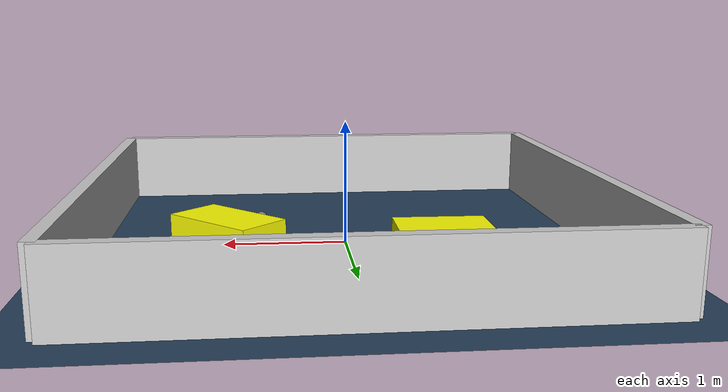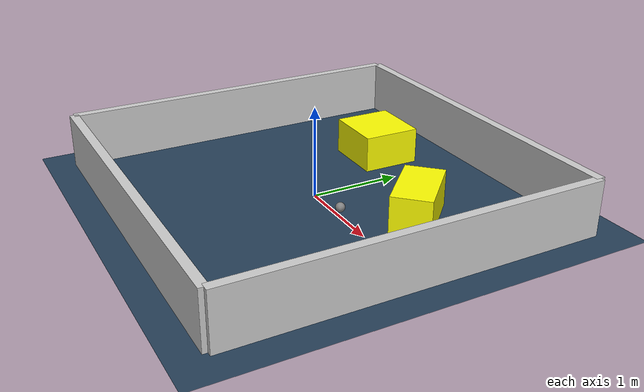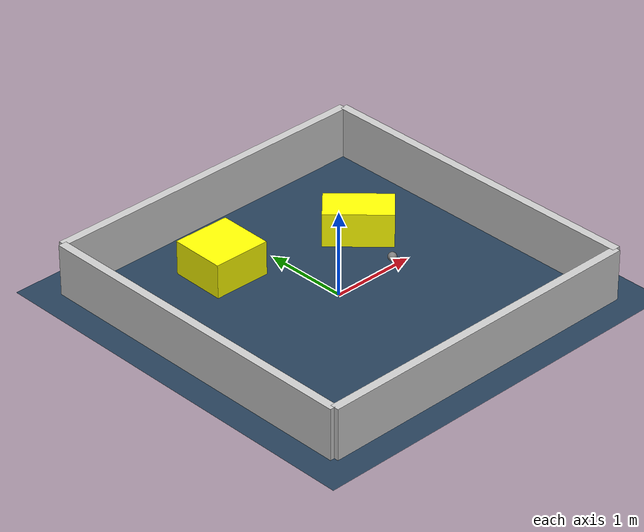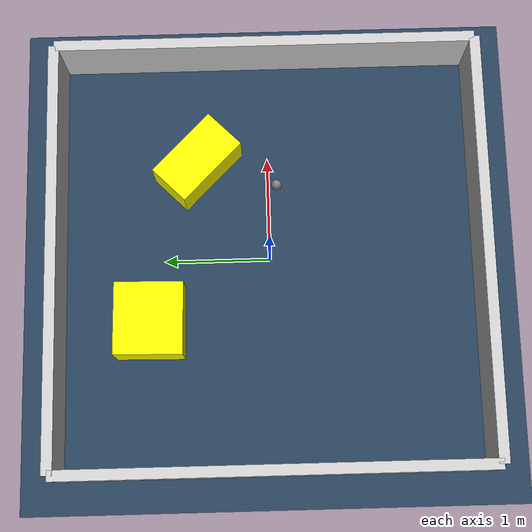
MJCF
<?xml version="1.0" ?>
<mujoco model="generated_environment">
  <option timestep="0.01" integrator="RK4" cone="elliptic"/>
  <default>
    <geom density="1"/>
  </default>
  <asset>
    <texture builtin="gradient" height="3072" rgb1="0.3 0.5 0.7" rgb2="0 0 0" type="skybox" width="512"/>
    <texture builtin="checker" height="300" mark="edge" markrgb="0.8 0.8 0.8" name="groundplane" rgb1="0.2 0.3 0.4" rgb2="0.1 0.2 0.3" type="2d" width="300"/>
    <material name="groundplane" reflectance="0.2" texrepeat="5 5" texture="groundplane" texuniform="true"/>
    <material name="robot" rgba="0.0 1.0 0.0 1"/>
  </asset>
  <worldbody>
    <light dir="0 0 -1" directional="true" pos="0 0 1.5"/>
    <geom condim="4" friction="1.0 0.005 0.001" material="groundplane" name="floor" size="0 0 0.05" type="plane"/>
    <body name="walls">
      <geom name="wall_1" condim="4" pos="-2.0 0.0 0.3" rgba="0.800000011920929 0.800000011920929 0.800000011920929 1.0" size="0.05 2.0 0.3" type="box"/>
      <geom name="wall_2" condim="4" pos="2.0 0.0 0.3" rgba="0.800000011920929 0.800000011920929 0.800000011920929 1.0" size="0.05 2.0 0.3" type="box"/>
      <geom name="wall_3" condim="4" pos="0.0 -2.0 0.3" rgba="0.800000011920929 0.800000011920929 0.800000011920929 1.0" size="2.0 0.05 0.3" type="box"/>
      <geom name="wall_4" condim="4" pos="0.0 2.0 0.3" rgba="0.800000011920929 0.800000011920929 0.800000011920929 1.0" size="2.0 0.05 0.3" type="box"/>
    </body>
    <body name="robot">
      <joint name="joint_x" type="slide" pos="0 0 0" axis="1 0 0"/>
      <joint name="joint_y" type="slide" pos="0 0 0" axis="0 1 0"/>
      <geom name="robot" type="sphere" pos="0.6889974667950844 -0.0832704722604447 0.2" size="0.05" mass="5." friction="1.0 0.005 0.0001" condim="4"/>
      <site name="sensor_ball"/>
    </body>
    <body name="obstacle_1_movable">
      <geom name="obstacle_1_movable" condim="4" pos="0.9325761204219476 0.6679396900391941 0.2" euler="0 0 45.18890916277066" friction="1.0 0.005 0.001" rgba="1 1 0 1" size="0.21437372538194618 0.3842447254631349 0.2" type="box" mass="0.1"/>
      <joint type="free"/>
    </body>
    <body name="obstacle_2_movable">
      <geom name="obstacle_2_movable" condim="4" pos="-0.5973755537571486 1.1329948395920728 0.2" euler="0 0 179.0356912460739" friction="1.0 0.005 0.001" rgba="1 1 0 1" size="0.3383570446850177 0.3210831079636557 0.2" type="box" mass="0.1"/>
      <joint type="free"/>
    </body>
  </worldbody>
  <actuator>
    <motor name="actuator_x" joint="joint_x" gear="1" ctrlrange="-1 1"/>
    <motor name="actuator_y" joint="joint_y" gear="1" ctrlrange="-1 1"/>
  </actuator>
</mujoco>
